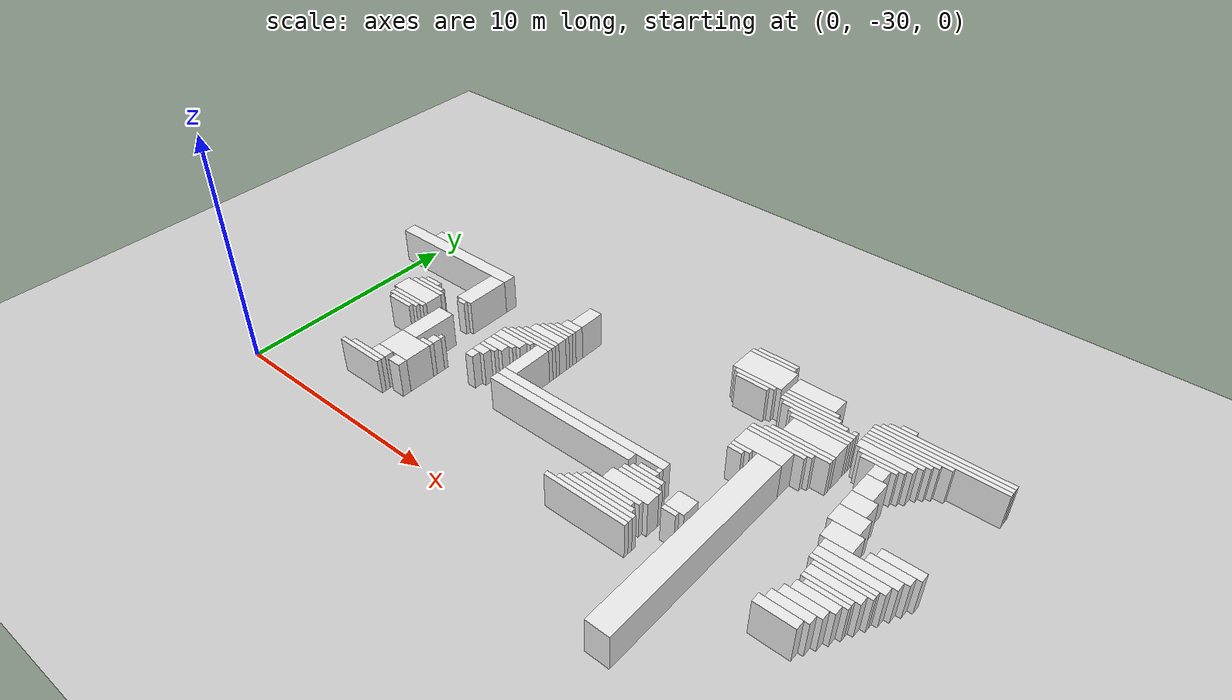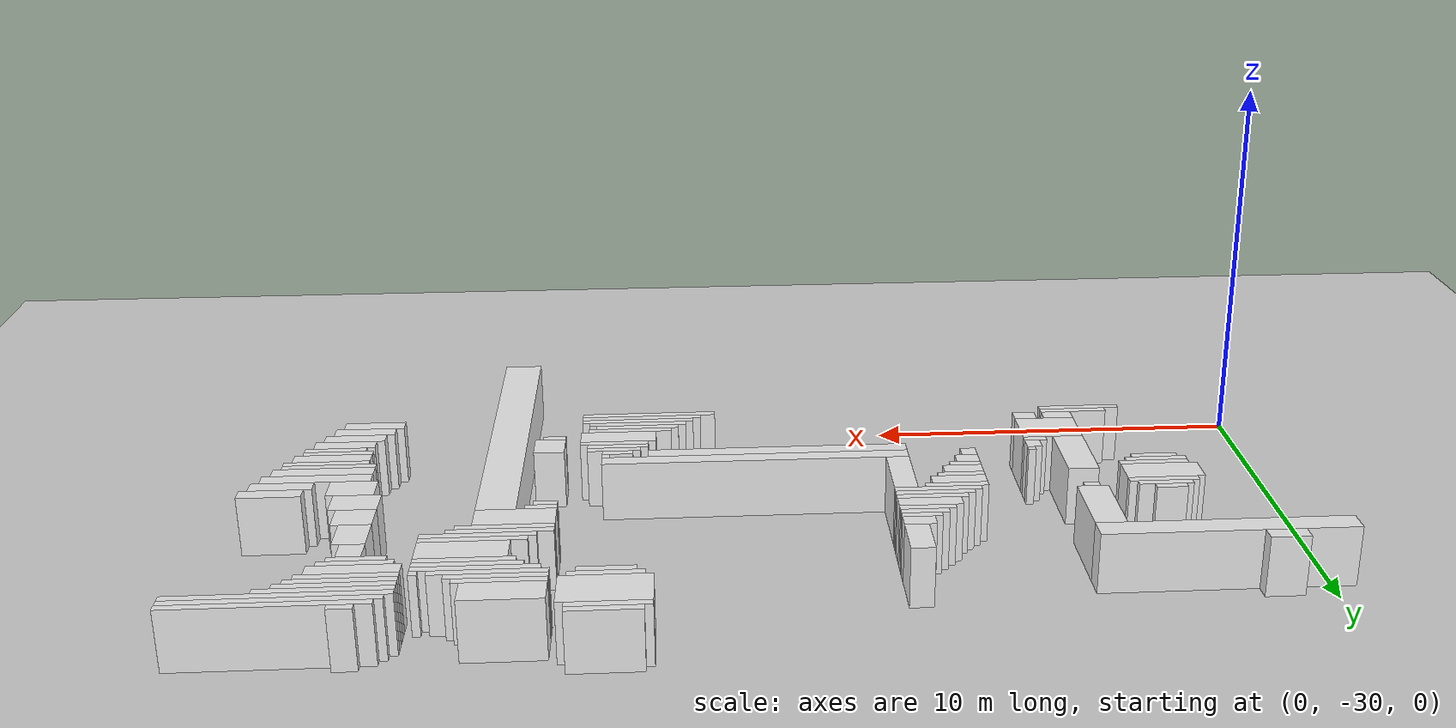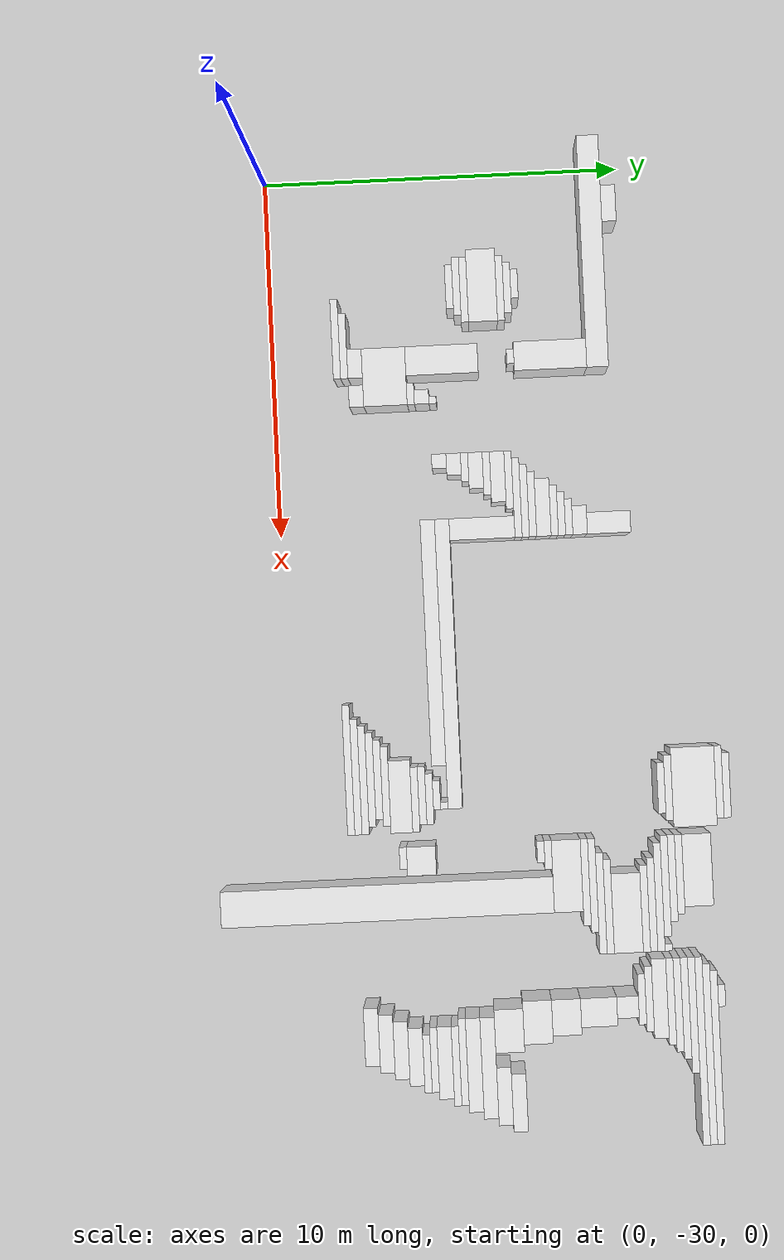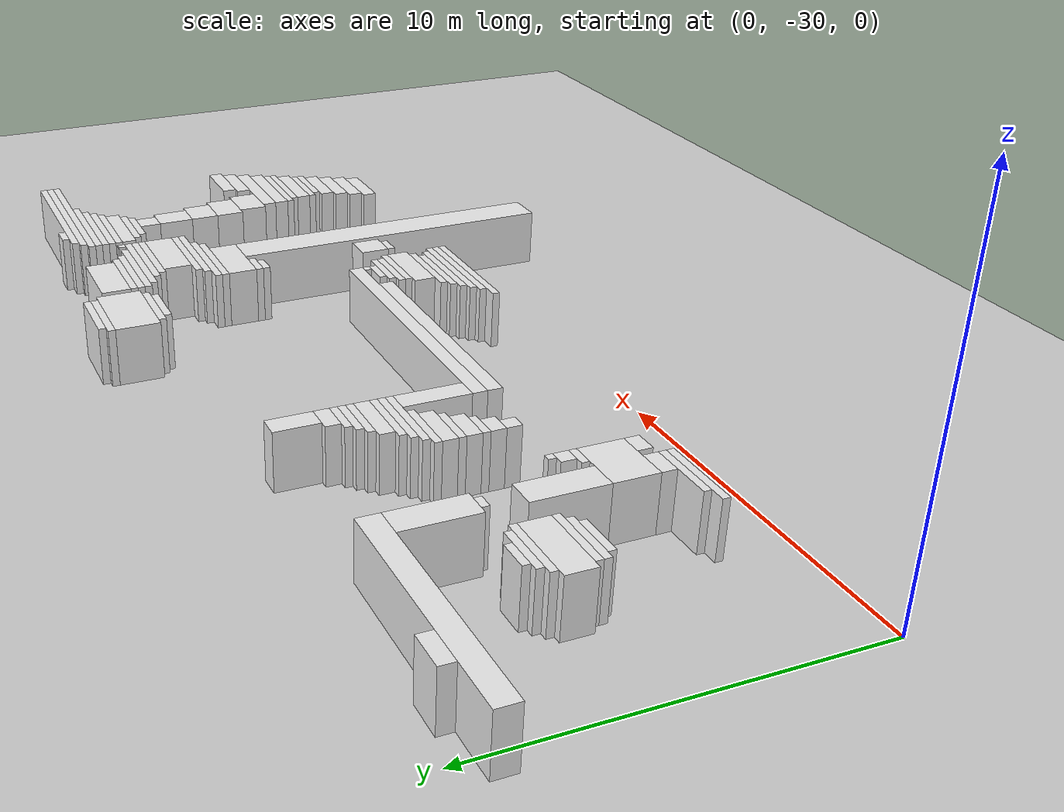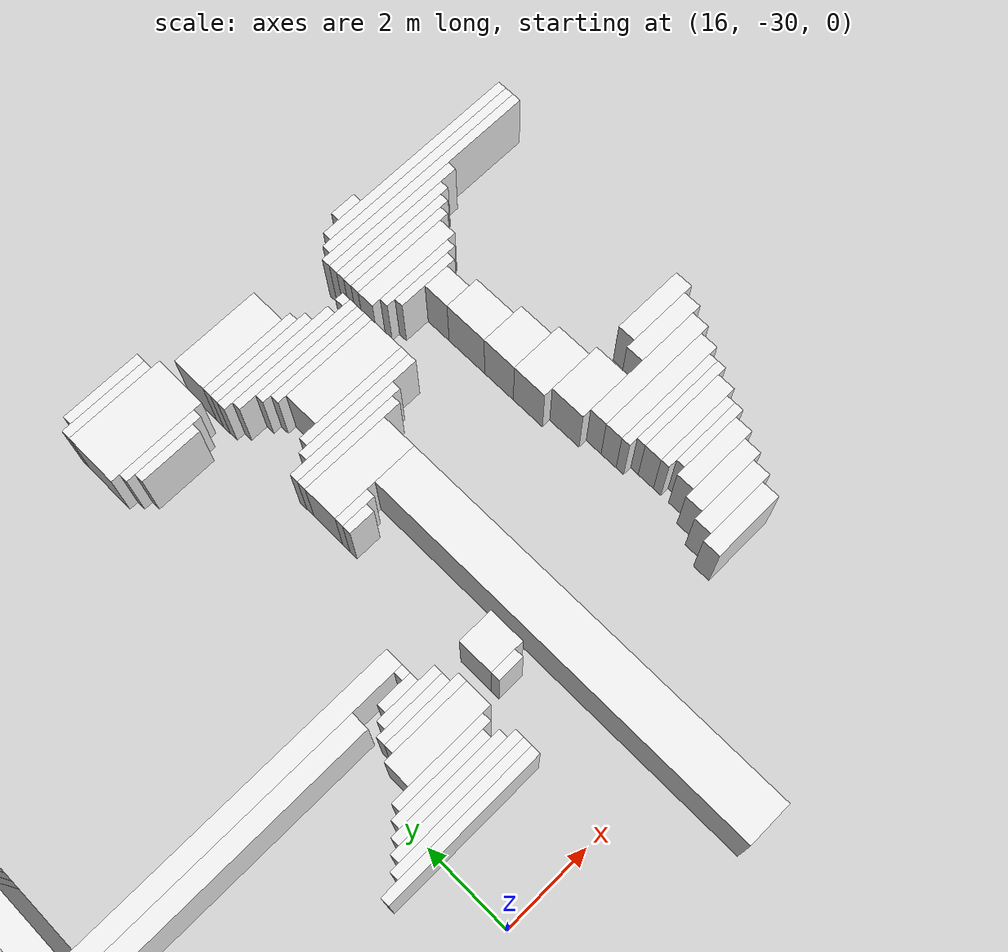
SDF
<sdf version="1.7">
 <world name="default">
  <model name="ground_plane">
   <static>1</static>
   <link name="link">
    <collision name="collision">
     <geometry><plane><normal>0 0 1</normal><size>120 120</size></plane></geometry>
    </collision>
    <visual name="visual">
     <geometry><plane><normal>0 0 1</normal><size>120 120</size></plane></geometry>
     <material>
      <script><uri>file://media/materials/scripts/gazebo.material</uri><name>Gazebo/Grey</name></script>
     </material>
    </visual>
   </link>
  </model>
  <model name="random_complex_01_model">
   <static>1</static>
   <link name="obs_2511">
    <pose>17.5000 -17.9000 0.8000 0 0 0</pose>
    <collision name="obs_2511_col"><geometry><box><size>1.8000 0.2000 1.6000</size></box></geometry></collision>
    <visual name="obs_2511_vis">
     <geometry><box><size>1.8000 0.2000 1.6000</size></box></geometry>
     <material>
      <script><uri>file://media/materials/scripts/gazebo.material</uri><name>Gazebo/White</name></script>
     </material>
    </visual>
   </link>
   <link name="obs_2516">
    <pose>17.4000 -18.1000 0.8000 0 0 0</pose>
    <collision name="obs_2516_col"><geometry><box><size>2.0000 0.2000 1.6000</size></box></geometry></collision>
    <visual name="obs_2516_vis">
     <geometry><box><size>2.0000 0.2000 1.6000</size></box></geometry>
     <material>
      <script><uri>file://media/materials/scripts/gazebo.material</uri><name>Gazebo/White</name></script>
     </material>
    </visual>
   </link>
   <link name="obs_2523">
    <pose>23.3000 -18.3000 0.8000 0 0 0</pose>
    <collision name="obs_2523_col"><geometry><box><size>0.6000 0.2000 1.6000</size></box></geometry></collision>
    <visual name="obs_2523_vis">
     <geometry><box><size>0.6000 0.2000 1.6000</size></box></geometry>
     <material>
      <script><uri>file://media/materials/scripts/gazebo.material</uri><name>Gazebo/White</name></script>
     </material>
    </visual>
   </link>
   <link name="obs_2529">
    <pose>25.0000 -18.5000 0.8000 0 0 0</pose>
    <collision name="obs_2529_col"><geometry><box><size>4.8000 0.2000 1.6000</size></box></geometry></collision>
    <visual name="obs_2529_vis">
     <geometry><box><size>4.8000 0.2000 1.6000</size></box></geometry>
     <material>
      <script><uri>file://media/materials/scripts/gazebo.material</uri><name>Gazebo/White</name></script>
     </material>
    </visual>
   </link>
   <link name="obs_2533">
    <pose>24.9000 -18.7000 0.8000 0 0 0</pose>
    <collision name="obs_2533_col"><geometry><box><size>5.0000 0.2000 1.6000</size></box></geometry></collision>
    <visual name="obs_2533_vis">
     <geometry><box><size>5.0000 0.2000 1.6000</size></box></geometry>
     <material>
      <script><uri>file://media/materials/scripts/gazebo.material</uri><name>Gazebo/White</name></script>
     </material>
    </visual>
   </link>
   <link name="obs_2536">
    <pose>24.8000 -18.9000 0.8000 0 0 0</pose>
    <collision name="obs_2536_col"><geometry><box><size>5.2000 0.2000 1.6000</size></box></geometry></collision>
    <visual name="obs_2536_vis">
     <geometry><box><size>5.2000 0.2000 1.6000</size></box></geometry>
     <material>
      <script><uri>file://media/materials/scripts/gazebo.material</uri><name>Gazebo/White</name></script>
     </material>
    </visual>
   </link>
   <link name="obs_2538">
    <pose>19.8000 -18.8000 0.8000 0 0 0</pose>
    <collision name="obs_2538_col"><geometry><box><size>2.0000 0.8000 1.6000</size></box></geometry></collision>
    <visual name="obs_2538_vis">
     <geometry><box><size>2.0000 0.8000 1.6000</size></box></geometry>
     <material>
      <script><uri>file://media/materials/scripts/gazebo.material</uri><name>Gazebo/White</name></script>
     </material>
    </visual>
   </link>
   <link name="obs_2542">
    <pose>23.8000 -19.1000 0.8000 0 0 0</pose>
    <collision name="obs_2542_col"><geometry><box><size>3.2000 0.2000 1.6000</size></box></geometry></collision>
    <visual name="obs_2542_vis">
     <geometry><box><size>3.2000 0.2000 1.6000</size></box></geometry>
     <material>
      <script><uri>file://media/materials/scripts/gazebo.material</uri><name>Gazebo/White</name></script>
     </material>
    </visual>
   </link>
   <link name="obs_2548">
    <pose>17.5000 -18.8000 0.8000 0 0 0</pose>
    <collision name="obs_2548_col"><geometry><box><size>2.2000 1.2000 1.6000</size></box></geometry></collision>
    <visual name="obs_2548_vis">
     <geometry><box><size>2.2000 1.2000 1.6000</size></box></geometry>
     <material>
      <script><uri>file://media/materials/scripts/gazebo.material</uri><name>Gazebo/White</name></script>
     </material>
    </visual>
   </link>
   <link name="obs_2551">
    <pose>19.9000 -19.3000 0.8000 0 0 0</pose>
    <collision name="obs_2551_col"><geometry><box><size>2.2000 0.2000 1.6000</size></box></geometry></collision>
    <visual name="obs_2551_vis">
     <geometry><box><size>2.2000 0.2000 1.6000</size></box></geometry>
     <material>
      <script><uri>file://media/materials/scripts/gazebo.material</uri><name>Gazebo/White</name></script>
     </material>
    </visual>
   </link>
   <link name="obs_2552">
    <pose>23.6000 -19.3000 0.8000 0 0 0</pose>
    <collision name="obs_2552_col"><geometry><box><size>2.8000 0.2000 1.6000</size></box></geometry></collision>
    <visual name="obs_2552_vis">
     <geometry><box><size>2.8000 0.2000 1.6000</size></box></geometry>
     <material>
      <script><uri>file://media/materials/scripts/gazebo.material</uri><name>Gazebo/White</name></script>
     </material>
    </visual>
   </link>
   <link name="obs_2560">
    <pose>17.5000 -19.5000 0.8000 0 0 0</pose>
    <collision name="obs_2560_col"><geometry><box><size>1.8000 0.2000 1.6000</size></box></geometry></collision>
    <visual name="obs_2560_vis">
     <geometry><box><size>1.8000 0.2000 1.6000</size></box></geometry>
     <material>
      <script><uri>file://media/materials/scripts/gazebo.material</uri><name>Gazebo/White</name></script>
     </material>
    </visual>
   </link>
   <link name="obs_2561">
    <pose>20.0000 -19.5000 0.8000 0 0 0</pose>
    <collision name="obs_2561_col"><geometry><box><size>2.4000 0.2000 1.6000</size></box></geometry></collision>
    <visual name="obs_2561_vis">
     <geometry><box><size>2.4000 0.2000 1.6000</size></box></geometry>
     <material>
      <script><uri>file://media/materials/scripts/gazebo.material</uri><name>Gazebo/White</name></script>
     </material>
    </visual>
   </link>
   <link name="obs_2562">
    <pose>23.5000 -19.5000 0.8000 0 0 0</pose>
    <collision name="obs_2562_col"><geometry><box><size>2.6000 0.2000 1.6000</size></box></geometry></collision>
    <visual name="obs_2562_vis">
     <geometry><box><size>2.6000 0.2000 1.6000</size></box></geometry>
     <material>
      <script><uri>file://media/materials/scripts/gazebo.material</uri><name>Gazebo/White</name></script>
     </material>
    </visual>
   </link>
   <link name="obs_2567">
    <pose>17.5000 -19.7000 0.8000 0 0 0</pose>
    <collision name="obs_2567_col"><geometry><box><size>1.4000 0.2000 1.6000</size></box></geometry></collision>
    <visual name="obs_2567_vis">
     <geometry><box><size>1.4000 0.2000 1.6000</size></box></geometry>
     <material>
      <script><uri>file://media/materials/scripts/gazebo.material</uri><name>Gazebo/White</name></script>
     </material>
    </visual>
   </link>
   <link name="obs_2568">
    <pose>20.2000 -19.7000 0.8000 0 0 0</pose>
    <collision name="obs_2568_col"><geometry><box><size>2.8000 0.2000 1.6000</size></box></geometry></collision>
    <visual name="obs_2568_vis">
     <geometry><box><size>2.8000 0.2000 1.6000</size></box></geometry>
     <material>
      <script><uri>file://media/materials/scripts/gazebo.material</uri><name>Gazebo/White</name></script>
     </material>
    </visual>
   </link>
   <link name="obs_2569">
    <pose>21.9000 -19.7000 0.8000 0 0 0</pose>
    <collision name="obs_2569_col"><geometry><box><size>0.2000 0.2000 1.6000</size></box></geometry></collision>
    <visual name="obs_2569_vis">
     <geometry><box><size>0.2000 0.2000 1.6000</size></box></geometry>
     <material>
      <script><uri>file://media/materials/scripts/gazebo.material</uri><name>Gazebo/White</name></script>
     </material>
    </visual>
   </link>
   <link name="obs_2570">
    <pose>23.4000 -19.7000 0.8000 0 0 0</pose>
    <collision name="obs_2570_col"><geometry><box><size>2.4000 0.2000 1.6000</size></box></geometry></collision>
    <visual name="obs_2570_vis">
     <geometry><box><size>2.4000 0.2000 1.6000</size></box></geometry>
     <material>
      <script><uri>file://media/materials/scripts/gazebo.material</uri><name>Gazebo/White</name></script>
     </material>
    </visual>
   </link>
   <link name="obs_2577">
    <pose>20.5000 -19.9000 0.8000 0 0 0</pose>
    <collision name="obs_2577_col"><geometry><box><size>3.0000 0.2000 1.6000</size></box></geometry></collision>
    <visual name="obs_2577_vis">
     <geometry><box><size>3.0000 0.2000 1.6000</size></box></geometry>
     <material>
      <script><uri>file://media/materials/scripts/gazebo.material</uri><name>Gazebo/White</name></script>
     </material>
    </visual>
   </link>
   <link name="obs_2581">
    <pose>23.3000 -20.0000 0.8000 0 0 0</pose>
    <collision name="obs_2581_col"><geometry><box><size>2.2000 0.4000 1.6000</size></box></geometry></collision>
    <visual name="obs_2581_vis">
     <geometry><box><size>2.2000 0.4000 1.6000</size></box></geometry>
     <material>
      <script><uri>file://media/materials/scripts/gazebo.material</uri><name>Gazebo/White</name></script>
     </material>
    </visual>
   </link>
   <link name="obs_2584">
    <pose>20.7000 -20.1000 0.8000 0 0 0</pose>
    <collision name="obs_2584_col"><geometry><box><size>2.6000 0.2000 1.6000</size></box></geometry></collision>
    <visual name="obs_2584_vis">
     <geometry><box><size>2.6000 0.2000 1.6000</size></box></geometry>
     <material>
      <script><uri>file://media/materials/scripts/gazebo.material</uri><name>Gazebo/White</name></script>
     </material>
    </visual>
   </link>
   <link name="obs_2589">
    <pose>20.8000 -20.3000 0.8000 0 0 0</pose>
    <collision name="obs_2589_col"><geometry><box><size>2.4000 0.2000 1.6000</size></box></geometry></collision>
    <visual name="obs_2589_vis">
     <geometry><box><size>2.4000 0.2000 1.6000</size></box></geometry>
     <material>
      <script><uri>file://media/materials/scripts/gazebo.material</uri><name>Gazebo/White</name></script>
     </material>
    </visual>
   </link>
   <link name="obs_2590">
    <pose>23.3000 -20.3000 0.8000 0 0 0</pose>
    <collision name="obs_2590_col"><geometry><box><size>1.8000 0.2000 1.6000</size></box></geometry></collision>
    <visual name="obs_2590_vis">
     <geometry><box><size>1.8000 0.2000 1.6000</size></box></geometry>
     <material>
      <script><uri>file://media/materials/scripts/gazebo.material</uri><name>Gazebo/White</name></script>
     </material>
    </visual>
   </link>
   <link name="obs_2594">
    <pose>1.3000 -20.4000 0.8000 0 0 0</pose>
    <collision name="obs_2594_col"><geometry><box><size>1.0000 0.4000 1.6000</size></box></geometry></collision>
    <visual name="obs_2594_vis">
     <geometry><box><size>1.0000 0.4000 1.6000</size></box></geometry>
     <material>
      <script><uri>file://media/materials/scripts/gazebo.material</uri><name>Gazebo/White</name></script>
     </material>
    </visual>
   </link>
   <link name="obs_2597">
    <pose>23.3000 -20.5000 0.8000 0 0 0</pose>
    <collision name="obs_2597_col"><geometry><box><size>1.4000 0.2000 1.6000</size></box></geometry></collision>
    <visual name="obs_2597_vis">
     <geometry><box><size>1.4000 0.2000 1.6000</size></box></geometry>
     <material>
      <script><uri>file://media/materials/scripts/gazebo.material</uri><name>Gazebo/White</name></script>
     </material>
    </visual>
   </link>
   <link name="obs_2617">
    <pose>20.9000 -20.8000 0.8000 0 0 0</pose>
    <collision name="obs_2617_col"><geometry><box><size>2.2000 0.8000 1.6000</size></box></geometry></collision>
    <visual name="obs_2617_vis">
     <geometry><box><size>2.2000 0.8000 1.6000</size></box></geometry>
     <material>
      <script><uri>file://media/materials/scripts/gazebo.material</uri><name>Gazebo/White</name></script>
     </material>
    </visual>
   </link>
   <link name="obs_2618">
    <pose>2.6000 -20.9000 0.8000 0 0 0</pose>
    <collision name="obs_2618_col"><geometry><box><size>6.4000 0.6000 1.6000</size></box></geometry></collision>
    <visual name="obs_2618_vis">
     <geometry><box><size>6.4000 0.6000 1.6000</size></box></geometry>
     <material>
      <script><uri>file://media/materials/scripts/gazebo.material</uri><name>Gazebo/White</name></script>
     </material>
    </visual>
   </link>
   <link name="obs_2619">
    <pose>23.5000 -20.9000 0.8000 0 0 0</pose>
    <collision name="obs_2619_col"><geometry><box><size>0.6000 0.6000 1.6000</size></box></geometry></collision>
    <visual name="obs_2619_vis">
     <geometry><box><size>0.6000 0.6000 1.6000</size></box></geometry>
     <material>
      <script><uri>file://media/materials/scripts/gazebo.material</uri><name>Gazebo/White</name></script>
     </material>
    </visual>
   </link>
   <link name="obs_2627">
    <pose>10.1000 -20.8000 0.8000 0 0 0</pose>
    <collision name="obs_2627_col"><geometry><box><size>0.6000 1.2000 1.6000</size></box></geometry></collision>
    <visual name="obs_2627_vis">
     <geometry><box><size>0.6000 1.2000 1.6000</size></box></geometry>
     <material>
      <script><uri>file://media/materials/scripts/gazebo.material</uri><name>Gazebo/White</name></script>
     </material>
    </visual>
   </link>
   <link name="obs_2631">
    <pose>20.7000 -21.3000 0.8000 0 0 0</pose>
    <collision name="obs_2631_col"><geometry><box><size>2.6000 0.2000 1.6000</size></box></geometry></collision>
    <visual name="obs_2631_vis">
     <geometry><box><size>2.6000 0.2000 1.6000</size></box></geometry>
     <material>
      <script><uri>file://media/materials/scripts/gazebo.material</uri><name>Gazebo/White</name></script>
     </material>
    </visual>
   </link>
   <link name="obs_2634">
    <pose>20.6000 -21.5000 0.8000 0 0 0</pose>
    <collision name="obs_2634_col"><geometry><box><size>2.8000 0.2000 1.6000</size></box></geometry></collision>
    <visual name="obs_2634_vis">
     <geometry><box><size>2.8000 0.2000 1.6000</size></box></geometry>
     <material>
      <script><uri>file://media/materials/scripts/gazebo.material</uri><name>Gazebo/White</name></script>
     </material>
    </visual>
   </link>
   <link name="obs_2638">
    <pose>10.0000 -21.6000 0.8000 0 0 0</pose>
    <collision name="obs_2638_col"><geometry><box><size>0.8000 0.4000 1.6000</size></box></geometry></collision>
    <visual name="obs_2638_vis">
     <geometry><box><size>0.8000 0.4000 1.6000</size></box></geometry>
     <material>
      <script><uri>file://media/materials/scripts/gazebo.material</uri><name>Gazebo/White</name></script>
     </material>
    </visual>
   </link>
   <link name="obs_2640">
    <pose>20.1000 -21.7000 0.8000 0 0 0</pose>
    <collision name="obs_2640_col"><geometry><box><size>2.6000 0.2000 1.6000</size></box></geometry></collision>
    <visual name="obs_2640_vis">
     <geometry><box><size>2.6000 0.2000 1.6000</size></box></geometry>
     <material>
      <script><uri>file://media/materials/scripts/gazebo.material</uri><name>Gazebo/White</name></script>
     </material>
    </visual>
   </link>
   <link name="obs_2644">
    <pose>9.9000 -21.9000 0.8000 0 0 0</pose>
    <collision name="obs_2644_col"><geometry><box><size>1.0000 0.2000 1.6000</size></box></geometry></collision>
    <visual name="obs_2644_vis">
     <geometry><box><size>1.0000 0.2000 1.6000</size></box></geometry>
     <material>
      <script><uri>file://media/materials/scripts/gazebo.material</uri><name>Gazebo/White</name></script>
     </material>
    </visual>
   </link>
   <link name="obs_2645">
    <pose>20.0000 -21.9000 0.8000 0 0 0</pose>
    <collision name="obs_2645_col"><geometry><box><size>2.4000 0.2000 1.6000</size></box></geometry></collision>
    <visual name="obs_2645_vis">
     <geometry><box><size>2.4000 0.2000 1.6000</size></box></geometry>
     <material>
      <script><uri>file://media/materials/scripts/gazebo.material</uri><name>Gazebo/White</name></script>
     </material>
    </visual>
   </link>
   <link name="obs_2647">
    <pose>23.6000 -21.7000 0.8000 0 0 0</pose>
    <collision name="obs_2647_col"><geometry><box><size>0.8000 1.0000 1.6000</size></box></geometry></collision>
    <visual name="obs_2647_vis">
     <geometry><box><size>0.8000 1.0000 1.6000</size></box></geometry>
     <material>
      <script><uri>file://media/materials/scripts/gazebo.material</uri><name>Gazebo/White</name></script>
     </material>
    </visual>
   </link>
   <link name="obs_2651">
    <pose>9.8000 -22.1000 0.8000 0 0 0</pose>
    <collision name="obs_2651_col"><geometry><box><size>1.2000 0.2000 1.6000</size></box></geometry></collision>
    <visual name="obs_2651_vis">
     <geometry><box><size>1.2000 0.2000 1.6000</size></box></geometry>
     <material>
      <script><uri>file://media/materials/scripts/gazebo.material</uri><name>Gazebo/White</name></script>
     </material>
    </visual>
   </link>
   <link name="obs_2655">
    <pose>9.7000 -22.3000 0.8000 0 0 0</pose>
    <collision name="obs_2655_col"><geometry><box><size>1.4000 0.2000 1.6000</size></box></geometry></collision>
    <visual name="obs_2655_vis">
     <geometry><box><size>1.4000 0.2000 1.6000</size></box></geometry>
     <material>
      <script><uri>file://media/materials/scripts/gazebo.material</uri><name>Gazebo/White</name></script>
     </material>
    </visual>
   </link>
   <link name="obs_2663">
    <pose>19.8000 -22.4000 0.8000 0 0 0</pose>
    <collision name="obs_2663_col"><geometry><box><size>2.0000 0.8000 1.6000</size></box></geometry></collision>
    <visual name="obs_2663_vis">
     <geometry><box><size>2.0000 0.8000 1.6000</size></box></geometry>
     <material>
      <script><uri>file://media/materials/scripts/gazebo.material</uri><name>Gazebo/White</name></script>
     </material>
    </visual>
   </link>
   <link name="obs_2665">
    <pose>9.6000 -22.6000 0.8000 0 0 0</pose>
    <collision name="obs_2665_col"><geometry><box><size>1.6000 0.4000 1.6000</size></box></geometry></collision>
    <visual name="obs_2665_vis">
     <geometry><box><size>1.6000 0.4000 1.6000</size></box></geometry>
     <material>
      <script><uri>file://media/materials/scripts/gazebo.material</uri><name>Gazebo/White</name></script>
     </material>
    </visual>
   </link>
   <link name="obs_2669">
    <pose>23.7000 -22.6000 0.8000 0 0 0</pose>
    <collision name="obs_2669_col"><geometry><box><size>1.0000 0.8000 1.6000</size></box></geometry></collision>
    <visual name="obs_2669_vis">
     <geometry><box><size>1.0000 0.8000 1.6000</size></box></geometry>
     <material>
      <script><uri>file://media/materials/scripts/gazebo.material</uri><name>Gazebo/White</name></script>
     </material>
    </visual>
   </link>
   <link name="obs_2671">
    <pose>9.5000 -22.9000 0.8000 0 0 0</pose>
    <collision name="obs_2671_col"><geometry><box><size>1.8000 0.2000 1.6000</size></box></geometry></collision>
    <visual name="obs_2671_vis">
     <geometry><box><size>1.8000 0.2000 1.6000</size></box></geometry>
     <material>
      <script><uri>file://media/materials/scripts/gazebo.material</uri><name>Gazebo/White</name></script>
     </material>
    </visual>
   </link>
   <link name="obs_2672">
    <pose>19.2000 -22.9000 0.8000 0 0 0</pose>
    <collision name="obs_2672_col"><geometry><box><size>0.8000 0.2000 1.6000</size></box></geometry></collision>
    <visual name="obs_2672_vis">
     <geometry><box><size>0.8000 0.2000 1.6000</size></box></geometry>
     <material>
      <script><uri>file://media/materials/scripts/gazebo.material</uri><name>Gazebo/White</name></script>
     </material>
    </visual>
   </link>
   <link name="obs_2675">
    <pose>5.4000 -22.2000 0.8000 0 0 0</pose>
    <collision name="obs_2675_col"><geometry><box><size>0.8000 2.0000 1.6000</size></box></geometry></collision>
    <visual name="obs_2675_vis">
     <geometry><box><size>0.8000 2.0000 1.6000</size></box></geometry>
     <material>
      <script><uri>file://media/materials/scripts/gazebo.material</uri><name>Gazebo/White</name></script>
     </material>
    </visual>
   </link>
   <link name="obs_2678">
    <pose>3.4000 -23.1000 0.8000 0 0 0</pose>
    <collision name="obs_2678_col"><geometry><box><size>0.8000 0.2000 1.6000</size></box></geometry></collision>
    <visual name="obs_2678_vis">
     <geometry><box><size>0.8000 0.2000 1.6000</size></box></geometry>
     <material>
      <script><uri>file://media/materials/scripts/gazebo.material</uri><name>Gazebo/White</name></script>
     </material>
    </visual>
   </link>
   <link name="obs_2679">
    <pose>9.4000 -23.1000 0.8000 0 0 0</pose>
    <collision name="obs_2679_col"><geometry><box><size>2.0000 0.2000 1.6000</size></box></geometry></collision>
    <visual name="obs_2679_vis">
     <geometry><box><size>2.0000 0.2000 1.6000</size></box></geometry>
     <material>
      <script><uri>file://media/materials/scripts/gazebo.material</uri><name>Gazebo/White</name></script>
     </material>
    </visual>
   </link>
   <link name="obs_2680">
    <pose>19.1000 -23.1000 0.8000 0 0 0</pose>
    <collision name="obs_2680_col"><geometry><box><size>0.6000 0.2000 1.6000</size></box></geometry></collision>
    <visual name="obs_2680_vis">
     <geometry><box><size>0.6000 0.2000 1.6000</size></box></geometry>
     <material>
      <script><uri>file://media/materials/scripts/gazebo.material</uri><name>Gazebo/White</name></script>
     </material>
    </visual>
   </link>
   <link name="obs_2690">
    <pose>3.5000 -23.3000 0.8000 0 0 0</pose>
    <collision name="obs_2690_col"><geometry><box><size>1.4000 0.2000 1.6000</size></box></geometry></collision>
    <visual name="obs_2690_vis">
     <geometry><box><size>1.4000 0.2000 1.6000</size></box></geometry>
     <material>
      <script><uri>file://media/materials/scripts/gazebo.material</uri><name>Gazebo/White</name></script>
     </material>
    </visual>
   </link>
   <link name="obs_2691">
    <pose>5.4000 -23.3000 0.8000 0 0 0</pose>
    <collision name="obs_2691_col"><geometry><box><size>0.4000 0.2000 1.6000</size></box></geometry></collision>
    <visual name="obs_2691_vis">
     <geometry><box><size>0.4000 0.2000 1.6000</size></box></geometry>
     <material>
      <script><uri>file://media/materials/scripts/gazebo.material</uri><name>Gazebo/White</name></script>
     </material>
    </visual>
   </link>
   <link name="obs_2692">
    <pose>9.3000 -23.3000 0.8000 0 0 0</pose>
    <collision name="obs_2692_col"><geometry><box><size>2.2000 0.2000 1.6000</size></box></geometry></collision>
    <visual name="obs_2692_vis">
     <geometry><box><size>2.2000 0.2000 1.6000</size></box></geometry>
     <material>
      <script><uri>file://media/materials/scripts/gazebo.material</uri><name>Gazebo/White</name></script>
     </material>
    </visual>
   </link>
   <link name="obs_2698">
    <pose>3.5000 -23.5000 0.8000 0 0 0</pose>
    <collision name="obs_2698_col"><geometry><box><size>1.8000 0.2000 1.6000</size></box></geometry></collision>
    <visual name="obs_2698_vis">
     <geometry><box><size>1.8000 0.2000 1.6000</size></box></geometry>
     <material>
      <script><uri>file://media/materials/scripts/gazebo.material</uri><name>Gazebo/White</name></script>
     </material>
    </visual>
   </link>
   <link name="obs_2699">
    <pose>8.8000 -23.5000 0.8000 0 0 0</pose>
    <collision name="obs_2699_col"><geometry><box><size>1.6000 0.2000 1.6000</size></box></geometry></collision>
    <visual name="obs_2699_vis">
     <geometry><box><size>1.6000 0.2000 1.6000</size></box></geometry>
     <material>
      <script><uri>file://media/materials/scripts/gazebo.material</uri><name>Gazebo/White</name></script>
     </material>
    </visual>
   </link>
   <link name="obs_2703">
    <pose>23.8000 -23.4000 0.8000 0 0 0</pose>
    <collision name="obs_2703_col"><geometry><box><size>1.2000 0.8000 1.6000</size></box></geometry></collision>
    <visual name="obs_2703_vis">
     <geometry><box><size>1.2000 0.8000 1.6000</size></box></geometry>
     <material>
      <script><uri>file://media/materials/scripts/gazebo.material</uri><name>Gazebo/White</name></script>
     </material>
    </visual>
   </link>
   <link name="obs_2711">
    <pose>8.7000 -23.8000 0.8000 0 0 0</pose>
    <collision name="obs_2711_col"><geometry><box><size>1.4000 0.4000 1.6000</size></box></geometry></collision>
    <visual name="obs_2711_vis">
     <geometry><box><size>1.4000 0.4000 1.6000</size></box></geometry>
     <material>
      <script><uri>file://media/materials/scripts/gazebo.material</uri><name>Gazebo/White</name></script>
     </material>
    </visual>
   </link>
   <link name="obs_2717">
    <pose>26.0000 -24.0000 0.8000 0 0 0</pose>
    <collision name="obs_2717_col"><geometry><box><size>1.6000 0.4000 1.6000</size></box></geometry></collision>
    <visual name="obs_2717_vis">
     <geometry><box><size>1.6000 0.4000 1.6000</size></box></geometry>
     <material>
      <script><uri>file://media/materials/scripts/gazebo.material</uri><name>Gazebo/White</name></script>
     </material>
    </visual>
   </link>
   <link name="obs_2719">
    <pose>8.6000 -24.1000 0.8000 0 0 0</pose>
    <collision name="obs_2719_col"><geometry><box><size>1.2000 0.2000 1.6000</size></box></geometry></collision>
    <visual name="obs_2719_vis">
     <geometry><box><size>1.2000 0.2000 1.6000</size></box></geometry>
     <material>
      <script><uri>file://media/materials/scripts/gazebo.material</uri><name>Gazebo/White</name></script>
     </material>
    </visual>
   </link>
   <link name="obs_2724">
    <pose>3.4000 -24.0000 0.8000 0 0 0</pose>
    <collision name="obs_2724_col"><geometry><box><size>2.0000 0.8000 1.6000</size></box></geometry></collision>
    <visual name="obs_2724_vis">
     <geometry><box><size>2.0000 0.8000 1.6000</size></box></geometry>
     <material>
      <script><uri>file://media/materials/scripts/gazebo.material</uri><name>Gazebo/White</name></script>
     </material>
    </visual>
   </link>
   <link name="obs_2730">
    <pose>24.0000 -24.2000 0.8000 0 0 0</pose>
    <collision name="obs_2730_col"><geometry><box><size>1.2000 0.8000 1.6000</size></box></geometry></collision>
    <visual name="obs_2730_vis">
     <geometry><box><size>1.2000 0.8000 1.6000</size></box></geometry>
     <material>
      <script><uri>file://media/materials/scripts/gazebo.material</uri><name>Gazebo/White</name></script>
     </material>
    </visual>
   </link>
   <link name="obs_2731">
    <pose>8.5000 -24.4000 0.8000 0 0 0</pose>
    <collision name="obs_2731_col"><geometry><box><size>1.0000 0.4000 1.6000</size></box></geometry></collision>
    <visual name="obs_2731_vis">
     <geometry><box><size>1.0000 0.4000 1.6000</size></box></geometry>
     <material>
      <script><uri>file://media/materials/scripts/gazebo.material</uri><name>Gazebo/White</name></script>
     </material>
    </visual>
   </link>
   <link name="obs_2732">
    <pose>25.8000 -24.4000 0.8000 0 0 0</pose>
    <collision name="obs_2732_col"><geometry><box><size>1.6000 0.4000 1.6000</size></box></geometry></collision>
    <visual name="obs_2732_vis">
     <geometry><box><size>1.6000 0.4000 1.6000</size></box></geometry>
     <material>
      <script><uri>file://media/materials/scripts/gazebo.material</uri><name>Gazebo/White</name></script>
     </material>
    </visual>
   </link>
   <link name="obs_2735">
    <pose>3.5000 -24.5000 0.8000 0 0 0</pose>
    <collision name="obs_2735_col"><geometry><box><size>1.8000 0.2000 1.6000</size></box></geometry></collision>
    <visual name="obs_2735_vis">
     <geometry><box><size>1.8000 0.2000 1.6000</size></box></geometry>
     <material>
      <script><uri>file://media/materials/scripts/gazebo.material</uri><name>Gazebo/White</name></script>
     </material>
    </visual>
   </link>
   <link name="obs_2740">
    <pose>3.4000 -24.7000 0.8000 0 0 0</pose>
    <collision name="obs_2740_col"><geometry><box><size>1.6000 0.2000 1.6000</size></box></geometry></collision>
    <visual name="obs_2740_vis">
     <geometry><box><size>1.6000 0.2000 1.6000</size></box></geometry>
     <material>
      <script><uri>file://media/materials/scripts/gazebo.material</uri><name>Gazebo/White</name></script>
     </material>
    </visual>
   </link>
   <link name="obs_2741">
    <pose>8.4000 -24.7000 0.8000 0 0 0</pose>
    <collision name="obs_2741_col"><geometry><box><size>0.8000 0.2000 1.6000</size></box></geometry></collision>
    <visual name="obs_2741_vis">
     <geometry><box><size>0.8000 0.2000 1.6000</size></box></geometry>
     <material>
      <script><uri>file://media/materials/scripts/gazebo.material</uri><name>Gazebo/White</name></script>
     </material>
    </visual>
   </link>
   <link name="obs_2745">
    <pose>25.0000 -24.8000 0.8000 0 0 0</pose>
    <collision name="obs_2745_col"><geometry><box><size>2.8000 0.4000 1.6000</size></box></geometry></collision>
    <visual name="obs_2745_vis">
     <geometry><box><size>2.8000 0.4000 1.6000</size></box></geometry>
     <material>
      <script><uri>file://media/materials/scripts/gazebo.material</uri><name>Gazebo/White</name></script>
     </material>
    </visual>
   </link>
   <link name="obs_2748">
    <pose>3.4000 -24.9000 0.8000 0 0 0</pose>
    <collision name="obs_2748_col"><geometry><box><size>1.2000 0.2000 1.6000</size></box></geometry></collision>
    <visual name="obs_2748_vis">
     <geometry><box><size>1.2000 0.2000 1.6000</size></box></geometry>
     <material>
      <script><uri>file://media/materials/scripts/gazebo.material</uri><name>Gazebo/White</name></script>
     </material>
    </visual>
   </link>
   <link name="obs_2752">
    <pose>10.1000 -24.3000 0.8000 0 0 0</pose>
    <collision name="obs_2752_col"><geometry><box><size>0.6000 1.8000 1.6000</size></box></geometry></collision>
    <visual name="obs_2752_vis">
     <geometry><box><size>0.6000 1.8000 1.6000</size></box></geometry>
     <material>
      <script><uri>file://media/materials/scripts/gazebo.material</uri><name>Gazebo/White</name></script>
     </material>
    </visual>
   </link>
   <link name="obs_2753">
    <pose>8.3000 -25.0000 0.8000 0 0 0</pose>
    <collision name="obs_2753_col"><geometry><box><size>0.6000 0.4000 1.6000</size></box></geometry></collision>
    <visual name="obs_2753_vis">
     <geometry><box><size>0.6000 0.4000 1.6000</size></box></geometry>
     <material>
      <script><uri>file://media/materials/scripts/gazebo.material</uri><name>Gazebo/White</name></script>
     </material>
    </visual>
   </link>
   <link name="obs_2759">
    <pose>24.9000 -25.2000 0.8000 0 0 0</pose>
    <collision name="obs_2759_col"><geometry><box><size>2.6000 0.4000 1.6000</size></box></geometry></collision>
    <visual name="obs_2759_vis">
     <geometry><box><size>2.6000 0.4000 1.6000</size></box></geometry>
     <material>
      <script><uri>file://media/materials/scripts/gazebo.material</uri><name>Gazebo/White</name></script>
     </material>
    </visual>
   </link>
   <link name="obs_2764">
    <pose>8.2000 -25.4000 0.8000 0 0 0</pose>
    <collision name="obs_2764_col"><geometry><box><size>0.4000 0.4000 1.6000</size></box></geometry></collision>
    <visual name="obs_2764_vis">
     <geometry><box><size>0.4000 0.4000 1.6000</size></box></geometry>
     <material>
      <script><uri>file://media/materials/scripts/gazebo.material</uri><name>Gazebo/White</name></script>
     </material>
    </visual>
   </link>
   <link name="obs_2765">
    <pose>13.8000 -25.4000 0.8000 0 0 0</pose>
    <collision name="obs_2765_col"><geometry><box><size>8.0000 0.4000 1.6000</size></box></geometry></collision>
    <visual name="obs_2765_vis">
     <geometry><box><size>8.0000 0.4000 1.6000</size></box></geometry>
     <material>
      <script><uri>file://media/materials/scripts/gazebo.material</uri><name>Gazebo/White</name></script>
     </material>
    </visual>
   </link>
   <link name="obs_2769">
    <pose>6.5000 -25.5000 0.8000 0 0 0</pose>
    <collision name="obs_2769_col"><geometry><box><size>0.2000 0.2000 1.6000</size></box></geometry></collision>
    <visual name="obs_2769_vis">
     <geometry><box><size>0.2000 0.2000 1.6000</size></box></geometry>
     <material>
      <script><uri>file://media/materials/scripts/gazebo.material</uri><name>Gazebo/White</name></script>
     </material>
    </visual>
   </link>
   <link name="obs_2770">
    <pose>24.8000 -25.5000 0.8000 0 0 0</pose>
    <collision name="obs_2770_col"><geometry><box><size>2.4000 0.2000 1.6000</size></box></geometry></collision>
    <visual name="obs_2770_vis">
     <geometry><box><size>2.4000 0.2000 1.6000</size></box></geometry>
     <material>
      <script><uri>file://media/materials/scripts/gazebo.material</uri><name>Gazebo/White</name></script>
     </material>
    </visual>
   </link>
   <link name="obs_2779">
    <pose>17.7000 -25.7000 0.8000 0 0 0</pose>
    <collision name="obs_2779_col"><geometry><box><size>0.2000 0.2000 1.6000</size></box></geometry></collision>
    <visual name="obs_2779_vis">
     <geometry><box><size>0.2000 0.2000 1.6000</size></box></geometry>
     <material>
      <script><uri>file://media/materials/scripts/gazebo.material</uri><name>Gazebo/White</name></script>
     </material>
    </visual>
   </link>
   <link name="obs_2780">
    <pose>24.9000 -25.7000 0.8000 0 0 0</pose>
    <collision name="obs_2780_col"><geometry><box><size>2.2000 0.2000 1.6000</size></box></geometry></collision>
    <visual name="obs_2780_vis">
     <geometry><box><size>2.2000 0.2000 1.6000</size></box></geometry>
     <material>
      <script><uri>file://media/materials/scripts/gazebo.material</uri><name>Gazebo/White</name></script>
     </material>
    </visual>
   </link>
   <link name="obs_2782">
    <pose>6.4000 -25.8000 0.8000 0 0 0</pose>
    <collision name="obs_2782_col"><geometry><box><size>0.4000 0.4000 1.6000</size></box></geometry></collision>
    <visual name="obs_2782_vis">
     <geometry><box><size>0.4000 0.4000 1.6000</size></box></geometry>
     <material>
      <script><uri>file://media/materials/scripts/gazebo.material</uri><name>Gazebo/White</name></script>
     </material>
    </visual>
   </link>
   <link name="obs_2783">
    <pose>13.2000 -25.8000 0.8000 0 0 0</pose>
    <collision name="obs_2783_col"><geometry><box><size>6.8000 0.4000 1.6000</size></box></geometry></collision>
    <visual name="obs_2783_vis">
     <geometry><box><size>6.8000 0.4000 1.6000</size></box></geometry>
     <material>
      <script><uri>file://media/materials/scripts/gazebo.material</uri><name>Gazebo/White</name></script>
     </material>
    </visual>
   </link>
   <link name="obs_2788">
    <pose>17.4000 -25.9000 0.8000 0 0 0</pose>
    <collision name="obs_2788_col"><geometry><box><size>0.8000 0.2000 1.6000</size></box></geometry></collision>
    <visual name="obs_2788_vis">
     <geometry><box><size>0.8000 0.2000 1.6000</size></box></geometry>
     <material>
      <script><uri>file://media/materials/scripts/gazebo.material</uri><name>Gazebo/White</name></script>
     </material>
    </visual>
   </link>
   <link name="obs_2790">
    <pose>5.4000 -25.2000 0.8000 0 0 0</pose>
    <collision name="obs_2790_col"><geometry><box><size>0.8000 2.0000 1.6000</size></box></geometry></collision>
    <visual name="obs_2790_vis">
     <geometry><box><size>0.8000 2.0000 1.6000</size></box></geometry>
     <material>
      <script><uri>file://media/materials/scripts/gazebo.material</uri><name>Gazebo/White</name></script>
     </material>
    </visual>
   </link>
   <link name="obs_2792">
    <pose>24.8000 -26.0000 0.8000 0 0 0</pose>
    <collision name="obs_2792_col"><geometry><box><size>2.0000 0.4000 1.6000</size></box></geometry></collision>
    <visual name="obs_2792_vis">
     <geometry><box><size>2.0000 0.4000 1.6000</size></box></geometry>
     <material>
      <script><uri>file://media/materials/scripts/gazebo.material</uri><name>Gazebo/White</name></script>
     </material>
    </visual>
   </link>
   <link name="obs_2795">
    <pose>6.3000 -26.1000 0.8000 0 0 0</pose>
    <collision name="obs_2795_col"><geometry><box><size>0.6000 0.2000 1.6000</size></box></geometry></collision>
    <visual name="obs_2795_vis">
     <geometry><box><size>0.6000 0.2000 1.6000</size></box></geometry>
     <material>
      <script><uri>file://media/materials/scripts/gazebo.material</uri><name>Gazebo/White</name></script>
     </material>
    </visual>
   </link>
   <link name="obs_2796">
    <pose>17.5000 -26.1000 0.8000 0 0 0</pose>
    <collision name="obs_2796_col"><geometry><box><size>1.4000 0.2000 1.6000</size></box></geometry></collision>
    <visual name="obs_2796_vis">
     <geometry><box><size>1.4000 0.2000 1.6000</size></box></geometry>
     <material>
      <script><uri>file://media/materials/scripts/gazebo.material</uri><name>Gazebo/White</name></script>
     </material>
    </visual>
   </link>
   <link name="obs_2801">
    <pose>17.4000 -26.3000 0.8000 0 0 0</pose>
    <collision name="obs_2801_col"><geometry><box><size>1.6000 0.2000 1.6000</size></box></geometry></collision>
    <visual name="obs_2801_vis">
     <geometry><box><size>1.6000 0.2000 1.6000</size></box></geometry>
     <material>
      <script><uri>file://media/materials/scripts/gazebo.material</uri><name>Gazebo/White</name></script>
     </material>
    </visual>
   </link>
   <link name="obs_2802">
    <pose>24.7000 -26.3000 0.8000 0 0 0</pose>
    <collision name="obs_2802_col"><geometry><box><size>1.8000 0.2000 1.6000</size></box></geometry></collision>
    <visual name="obs_2802_vis">
     <geometry><box><size>1.8000 0.2000 1.6000</size></box></geometry>
     <material>
      <script><uri>file://media/materials/scripts/gazebo.material</uri><name>Gazebo/White</name></script>
     </material>
    </visual>
   </link>
   <link name="obs_2807">
    <pose>17.5000 -26.5000 0.8000 0 0 0</pose>
    <collision name="obs_2807_col"><geometry><box><size>1.8000 0.2000 1.6000</size></box></geometry></collision>
    <visual name="obs_2807_vis">
     <geometry><box><size>1.8000 0.2000 1.6000</size></box></geometry>
     <material>
      <script><uri>file://media/materials/scripts/gazebo.material</uri><name>Gazebo/White</name></script>
     </material>
    </visual>
   </link>
   <link name="obs_2808">
    <pose>24.8000 -26.5000 0.8000 0 0 0</pose>
    <collision name="obs_2808_col"><geometry><box><size>1.6000 0.2000 1.6000</size></box></geometry></collision>
    <visual name="obs_2808_vis">
     <geometry><box><size>1.6000 0.2000 1.6000</size></box></geometry>
     <material>
      <script><uri>file://media/materials/scripts/gazebo.material</uri><name>Gazebo/White</name></script>
     </material>
    </visual>
   </link>
   <link name="obs_2809">
    <pose>19.2000 -26.4000 0.8000 0 0 0</pose>
    <collision name="obs_2809_col"><geometry><box><size>0.8000 0.8000 1.6000</size></box></geometry></collision>
    <visual name="obs_2809_vis">
     <geometry><box><size>0.8000 0.8000 1.6000</size></box></geometry>
     <material>
      <script><uri>file://media/materials/scripts/gazebo.material</uri><name>Gazebo/White</name></script>
     </material>
    </visual>
   </link>
   <link name="obs_2815">
    <pose>24.6000 -26.8000 0.8000 0 0 0</pose>
    <collision name="obs_2815_col"><geometry><box><size>1.6000 0.4000 1.6000</size></box></geometry></collision>
    <visual name="obs_2815_vis">
     <geometry><box><size>1.6000 0.4000 1.6000</size></box></geometry>
     <material>
      <script><uri>file://media/materials/scripts/gazebo.material</uri><name>Gazebo/White</name></script>
     </material>
    </visual>
   </link>
   <link name="obs_2818">
    <pose>19.1000 -26.9000 0.8000 0 0 0</pose>
    <collision name="obs_2818_col"><geometry><box><size>0.6000 0.2000 1.6000</size></box></geometry></collision>
    <visual name="obs_2818_vis">
     <geometry><box><size>0.6000 0.2000 1.6000</size></box></geometry>
     <material>
      <script><uri>file://media/materials/scripts/gazebo.material</uri><name>Gazebo/White</name></script>
     </material>
    </visual>
   </link>
   <link name="obs_2821">
    <pose>17.4000 -26.9000 0.8000 0 0 0</pose>
    <collision name="obs_2821_col"><geometry><box><size>2.0000 0.6000 1.6000</size></box></geometry></collision>
    <visual name="obs_2821_vis">
     <geometry><box><size>2.0000 0.6000 1.6000</size></box></geometry>
     <material>
      <script><uri>file://media/materials/scripts/gazebo.material</uri><name>Gazebo/White</name></script>
     </material>
    </visual>
   </link>
   <link name="obs_2828">
    <pose>5.8000 -26.8000 0.8000 0 0 0</pose>
    <collision name="obs_2828_col"><geometry><box><size>1.6000 1.2000 1.6000</size></box></geometry></collision>
    <visual name="obs_2828_vis">
     <geometry><box><size>1.6000 1.2000 1.6000</size></box></geometry>
     <material>
      <script><uri>file://media/materials/scripts/gazebo.material</uri><name>Gazebo/White</name></script>
     </material>
    </visual>
   </link>
   <link name="obs_2829">
    <pose>24.4000 -27.2000 0.8000 0 0 0</pose>
    <collision name="obs_2829_col"><geometry><box><size>1.6000 0.4000 1.6000</size></box></geometry></collision>
    <visual name="obs_2829_vis">
     <geometry><box><size>1.6000 0.4000 1.6000</size></box></geometry>
     <material>
      <script><uri>file://media/materials/scripts/gazebo.material</uri><name>Gazebo/White</name></script>
     </material>
    </visual>
   </link>
   <link name="obs_2833">
    <pose>17.1000 -27.3000 0.8000 0 0 0</pose>
    <collision name="obs_2833_col"><geometry><box><size>2.2000 0.2000 1.6000</size></box></geometry></collision>
    <visual name="obs_2833_vis">
     <geometry><box><size>2.2000 0.2000 1.6000</size></box></geometry>
     <material>
      <script><uri>file://media/materials/scripts/gazebo.material</uri><name>Gazebo/White</name></script>
     </material>
    </visual>
   </link>
   <link name="obs_2838">
    <pose>16.9000 -27.5000 0.8000 0 0 0</pose>
    <collision name="obs_2838_col"><geometry><box><size>2.2000 0.2000 1.6000</size></box></geometry></collision>
    <visual name="obs_2838_vis">
     <geometry><box><size>2.2000 0.2000 1.6000</size></box></geometry>
     <material>
      <script><uri>file://media/materials/scripts/gazebo.material</uri><name>Gazebo/White</name></script>
     </material>
    </visual>
   </link>
   <link name="obs_2844">
    <pose>5.4000 -27.6000 0.8000 0 0 0</pose>
    <collision name="obs_2844_col"><geometry><box><size>0.8000 0.4000 1.6000</size></box></geometry></collision>
    <visual name="obs_2844_vis">
     <geometry><box><size>0.8000 0.4000 1.6000</size></box></geometry>
     <material>
      <script><uri>file://media/materials/scripts/gazebo.material</uri><name>Gazebo/White</name></script>
     </material>
    </visual>
   </link>
   <link name="obs_2845">
    <pose>6.3000 -27.6000 0.8000 0 0 0</pose>
    <collision name="obs_2845_col"><geometry><box><size>0.6000 0.4000 1.6000</size></box></geometry></collision>
    <visual name="obs_2845_vis">
     <geometry><box><size>0.6000 0.4000 1.6000</size></box></geometry>
     <material>
      <script><uri>file://media/materials/scripts/gazebo.material</uri><name>Gazebo/White</name></script>
     </material>
    </visual>
   </link>
   <link name="obs_2846">
    <pose>24.2000 -27.6000 0.8000 0 0 0</pose>
    <collision name="obs_2846_col"><geometry><box><size>1.6000 0.4000 1.6000</size></box></geometry></collision>
    <visual name="obs_2846_vis">
     <geometry><box><size>1.6000 0.4000 1.6000</size></box></geometry>
     <material>
      <script><uri>file://media/materials/scripts/gazebo.material</uri><name>Gazebo/White</name></script>
     </material>
    </visual>
   </link>
   <link name="obs_2849">
    <pose>16.9000 -27.7000 0.8000 0 0 0</pose>
    <collision name="obs_2849_col"><geometry><box><size>2.6000 0.2000 1.6000</size></box></geometry></collision>
    <visual name="obs_2849_vis">
     <geometry><box><size>2.6000 0.2000 1.6000</size></box></geometry>
     <material>
      <script><uri>file://media/materials/scripts/gazebo.material</uri><name>Gazebo/White</name></script>
     </material>
    </visual>
   </link>
   <link name="obs_2856">
    <pose>4.9000 -27.9000 0.8000 0 0 0</pose>
    <collision name="obs_2856_col"><geometry><box><size>1.8000 0.2000 1.6000</size></box></geometry></collision>
    <visual name="obs_2856_vis">
     <geometry><box><size>1.8000 0.2000 1.6000</size></box></geometry>
     <material>
      <script><uri>file://media/materials/scripts/gazebo.material</uri><name>Gazebo/White</name></script>
     </material>
    </visual>
   </link>
   <link name="obs_2857">
    <pose>16.9000 -27.9000 0.8000 0 0 0</pose>
    <collision name="obs_2857_col"><geometry><box><size>3.0000 0.2000 1.6000</size></box></geometry></collision>
    <visual name="obs_2857_vis">
     <geometry><box><size>3.0000 0.2000 1.6000</size></box></geometry>
     <material>
      <script><uri>file://media/materials/scripts/gazebo.material</uri><name>Gazebo/White</name></script>
     </material>
    </visual>
   </link>
   <link name="obs_2861">
    <pose>24.0000 -28.0000 0.8000 0 0 0</pose>
    <collision name="obs_2861_col"><geometry><box><size>1.6000 0.4000 1.6000</size></box></geometry></collision>
    <visual name="obs_2861_vis">
     <geometry><box><size>1.6000 0.4000 1.6000</size></box></geometry>
     <material>
      <script><uri>file://media/materials/scripts/gazebo.material</uri><name>Gazebo/White</name></script>
     </material>
    </visual>
   </link>
   <link name="obs_2865">
    <pose>4.7000 -28.1000 0.8000 0 0 0</pose>
    <collision name="obs_2865_col"><geometry><box><size>2.2000 0.2000 1.6000</size></box></geometry></collision>
    <visual name="obs_2865_vis">
     <geometry><box><size>2.2000 0.2000 1.6000</size></box></geometry>
     <material>
      <script><uri>file://media/materials/scripts/gazebo.material</uri><name>Gazebo/White</name></script>
     </material>
    </visual>
   </link>
   <link name="obs_2866">
    <pose>16.8000 -28.1000 0.8000 0 0 0</pose>
    <collision name="obs_2866_col"><geometry><box><size>3.2000 0.2000 1.6000</size></box></geometry></collision>
    <visual name="obs_2866_vis">
     <geometry><box><size>3.2000 0.2000 1.6000</size></box></geometry>
     <material>
      <script><uri>file://media/materials/scripts/gazebo.material</uri><name>Gazebo/White</name></script>
     </material>
    </visual>
   </link>
   <link name="obs_2873">
    <pose>16.6000 -28.3000 0.8000 0 0 0</pose>
    <collision name="obs_2873_col"><geometry><box><size>3.6000 0.2000 1.6000</size></box></geometry></collision>
    <visual name="obs_2873_vis">
     <geometry><box><size>3.6000 0.2000 1.6000</size></box></geometry>
     <material>
      <script><uri>file://media/materials/scripts/gazebo.material</uri><name>Gazebo/White</name></script>
     </material>
    </visual>
   </link>
   <link name="obs_2992">
    <pose>20.3000 -27.4000 0.8000 0 0 0</pose>
    <collision name="obs_2992_col"><geometry><box><size>1.0000 9.2000 1.6000</size></box></geometry></collision>
    <visual name="obs_2992_vis">
     <geometry><box><size>1.0000 9.2000 1.6000</size></box></geometry>
     <material>
      <script><uri>file://media/materials/scripts/gazebo.material</uri><name>Gazebo/White</name></script>
     </material>
    </visual>
   </link>
  </model>
 </world>
</sdf>
